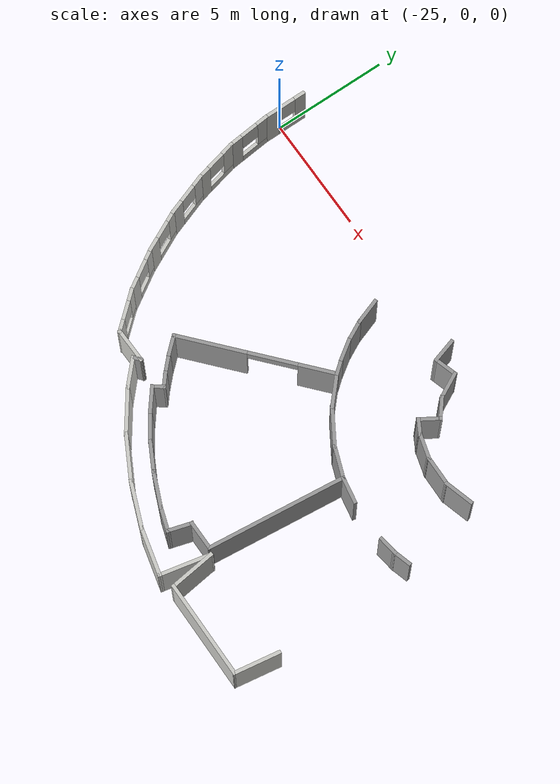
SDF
<sdf version="1.7">
 <model name="model">
  <pose>-4.1341 -0.059214 0 0 -0 0</pose>
  <link name="Wall_144">
   <collision name="Wall_144_Collision">
    <geometry><box><size>1.19979 0.15 2.5</size></box></geometry>
    <pose>0 0 1.25 0 -0 0</pose>
   </collision>
   <visual name="Wall_144_Visual">
    <pose>0 0 1.25 0 -0 0</pose>
    <geometry><box><size>1.19979 0.15 2.5</size></box></geometry>
    <material>
     <script><uri>file://media/materials/scripts/gazebo.material</uri><name>Gazebo/Grey</name></script>
     <ambient>0.929412 0.960784 0.933333 1</ambient>
    </material>
    <meta><layer>0</layer></meta>
   </visual>
   <pose>-11.6485 -2.13121 0 0 -0 -1.23709</pose>
  </link>
  <link name="Wall_145">
   <collision name="Wall_145_Collision">
    <geometry><box><size>1.02535 0.15 2.5</size></box></geometry>
    <pose>0 0 1.25 0 -0 0</pose>
   </collision>
   <visual name="Wall_145_Visual">
    <pose>0 0 1.25 0 -0 0</pose>
    <geometry><box><size>1.02535 0.15 2.5</size></box></geometry>
    <material>
     <script><uri>file://media/materials/scripts/gazebo.material</uri><name>Gazebo/Grey</name></script>
     <ambient>0.929412 0.960784 0.933333 1</ambient>
    </material>
    <meta><layer>0</layer></meta>
   </visual>
   <pose>-11.2782 -3.01729 0 0 -0 -1.10039</pose>
  </link>
  <link name="Wall_146">
   <collision name="Wall_146_Collision">
    <geometry><box><size>0.997329 0.15 2.5</size></box></geometry>
    <pose>0 0 1.25 0 -0 0</pose>
   </collision>
   <visual name="Wall_146_Visual">
    <pose>0 0 1.25 0 -0 0</pose>
    <geometry><box><size>0.997329 0.15 2.5</size></box></geometry>
    <material>
     <script><uri>file://media/materials/scripts/gazebo.material</uri><name>Gazebo/Grey</name></script>
     <ambient>0.929412 0.960784 0.933333 1</ambient>
    </material>
    <meta><layer>0</layer></meta>
   </visual>
   <pose>-10.8418 -3.75789 0 0 -0 -0.974136</pose>
  </link>
  <link name="Wall_147">
   <collision name="Wall_147_Collision">
    <geometry><box><size>0.761361 0.15 2.5</size></box></geometry>
    <pose>0 0 1.25 0 -0 0</pose>
   </collision>
   <visual name="Wall_147_Visual">
    <pose>0 0 1.25 0 -0 0</pose>
    <geometry><box><size>0.761361 0.15 2.5</size></box></geometry>
    <material>
     <script><uri>file://media/materials/scripts/gazebo.material</uri><name>Gazebo/Grey</name></script>
     <ambient>0.929412 0.960784 0.933333 1</ambient>
    </material>
    <meta><layer>0</layer></meta>
   </visual>
   <pose>-10.4119 -4.3464 0 0 -0 -0.892677</pose>
  </link>
  <link name="Wall_149">
   <pose>-12.6849 -6.76582 0 0 -0 -2.4171</pose>
   <visual name="Wall_149_Visual_0">
    <pose>-2.54709 0 1.25 0 -0 0</pose>
    <geometry><box><size>1.63856 0.15 2.5</size></box></geometry>
    <material>
     <script><uri>file://media/materials/scripts/gazebo.material</uri><name>Gazebo/Grey</name></script>
     <ambient>0.929412 0.960784 0.933333 1</ambient>
    </material>
    <meta><layer>0</layer></meta>
   </visual>
   <collision name="Wall_149_Collision_0">
    <geometry><box><size>1.63856 0.15 2.5</size></box></geometry>
    <pose>-2.54709 0 1.25 0 -0 0</pose>
   </collision>
   <visual name="Wall_149_Visual_1">
    <pose>1.84361 0 1.25 0 -0 0</pose>
    <geometry><box><size>3.04552 0.15 2.5</size></box></geometry>
    <material>
     <script><uri>file://media/materials/scripts/gazebo.material</uri><name>Gazebo/Grey</name></script>
     <ambient>0.929412 0.960784 0.933333 1</ambient>
    </material>
    <meta><layer>0</layer></meta>
   </visual>
   <collision name="Wall_149_Collision_1">
    <geometry><box><size>3.04552 0.15 2.5</size></box></geometry>
    <pose>1.84361 0 1.25 0 -0 0</pose>
   </collision>
   <visual name="Wall_149_Visual_2">
    <pose>-0.703479 0 2.25 0 -0 0</pose>
    <geometry><box><size>2.04867 0.15 0.5</size></box></geometry>
    <material>
     <script><uri>file://media/materials/scripts/gazebo.material</uri><name>Gazebo/Grey</name></script>
     <ambient>0.929412 0.960784 0.933333 1</ambient>
    </material>
    <meta><layer>0</layer></meta>
   </visual>
   <collision name="Wall_149_Collision_2">
    <geometry><box><size>2.04867 0.15 0.5</size></box></geometry>
    <pose>-0.703479 0 2.25 0 -0 0</pose>
   </collision>
  </link>
  <link name="Wall_153">
   <collision name="Wall_153_Collision">
    <geometry><box><size>0.953287 0.15 2.5</size></box></geometry>
    <pose>0 0 1.25 0 -0 0</pose>
   </collision>
   <visual name="Wall_153_Visual">
    <pose>0 0 1.25 0 -0 0</pose>
    <geometry><box><size>0.953287 0.15 2.5</size></box></geometry>
    <material>
     <script><uri>file://media/materials/scripts/gazebo.material</uri><name>Gazebo/Grey</name></script>
     <ambient>1 1 1 1</ambient>
    </material>
    <meta><layer>0</layer></meta>
   </visual>
   <pose>-14.8797 -9.24465 0 0 -0 -0.833951</pose>
  </link>
  <link name="Wall_154">
   <collision name="Wall_154_Collision">
    <geometry><box><size>0.912545 0.15 2.5</size></box></geometry>
    <pose>0 0 1.25 0 -0 0</pose>
   </collision>
   <visual name="Wall_154_Visual">
    <pose>0 0 1.25 0 -0 0</pose>
    <geometry><box><size>0.912545 0.15 2.5</size></box></geometry>
    <material>
     <script><uri>file://media/materials/scripts/gazebo.material</uri><name>Gazebo/Grey</name></script>
     <ambient>1 1 1 1</ambient>
    </material>
    <meta><layer>0</layer></meta>
   </visual>
   <pose>-14.3359 -9.80732 0 0 -0 -0.769271</pose>
  </link>
  <link name="Wall_155">
   <collision name="Wall_155_Collision">
    <geometry><box><size>0.730072 0.15 2.5</size></box></geometry>
    <pose>0 0 1.25 0 -0 0</pose>
   </collision>
   <visual name="Wall_155_Visual">
    <pose>0 0 1.25 0 -0 0</pose>
    <geometry><box><size>0.730072 0.15 2.5</size></box></geometry>
    <material>
     <script><uri>file://media/materials/scripts/gazebo.material</uri><name>Gazebo/Grey</name></script>
     <ambient>1 1 1 1</ambient>
    </material>
    <meta><layer>0</layer></meta>
   </visual>
   <pose>-13.8402 -10.2595 0 0 -0 -0.700496</pose>
  </link>
  <link name="Wall_156">
   <collision name="Wall_156_Collision">
    <geometry><box><size>0.603926 0.15 2.5</size></box></geometry>
    <pose>0 0 1.25 0 -0 0</pose>
   </collision>
   <visual name="Wall_156_Visual">
    <pose>0 0 1.25 0 -0 0</pose>
    <geometry><box><size>0.603926 0.15 2.5</size></box></geometry>
    <material>
     <script><uri>file://media/materials/scripts/gazebo.material</uri><name>Gazebo/Grey</name></script>
     <ambient>1 1 1 1</ambient>
    </material>
    <meta><layer>0</layer></meta>
   </visual>
   <pose>-13.7533 -10.6291 0 0 -0 -2.20663</pose>
  </link>
  <link name="Wall_158">
   <collision name="Wall_158_Collision">
    <geometry><box><size>1.18744 0.15 2.5</size></box></geometry>
    <pose>0 0 1.25 0 -0 0</pose>
   </collision>
   <visual name="Wall_158_Visual">
    <pose>0 0 1.25 0 -0 0</pose>
    <geometry><box><size>1.18744 0.15 2.5</size></box></geometry>
    <material>
     <script><uri>file://media/materials/scripts/gazebo.material</uri><name>Gazebo/Grey</name></script>
     <ambient>1 1 1 1</ambient>
    </material>
    <meta><layer>0</layer></meta>
   </visual>
   <pose>-13.4803 -11.1323 0 0 -0 -0.666394</pose>
  </link>
  <link name="Wall_159">
   <collision name="Wall_159_Collision">
    <geometry><box><size>1.33983 0.15 2.5</size></box></geometry>
    <pose>0 0 1.25 0 -0 0</pose>
   </collision>
   <visual name="Wall_159_Visual">
    <pose>0 0 1.25 0 -0 0</pose>
    <geometry><box><size>1.33983 0.15 2.5</size></box></geometry>
    <material>
     <script><uri>file://media/materials/scripts/gazebo.material</uri><name>Gazebo/Grey</name></script>
     <ambient>1 1 1 1</ambient>
    </material>
    <meta><layer>0</layer></meta>
   </visual>
   <pose>-12.5776 -11.783 0 0 -0 -0.588003</pose>
  </link>
  <link name="Wall_160">
   <collision name="Wall_160_Collision">
    <geometry><box><size>1.37119 0.15 2.5</size></box></geometry>
    <pose>0 0 1.25 0 -0 0</pose>
   </collision>
   <visual name="Wall_160_Visual">
    <pose>0 0 1.25 0 -0 0</pose>
    <geometry><box><size>1.37119 0.15 2.5</size></box></geometry>
    <material>
     <script><uri>file://media/materials/scripts/gazebo.material</uri><name>Gazebo/Grey</name></script>
     <ambient>1 1 1 1</ambient>
    </material>
    <meta><layer>0</layer></meta>
   </visual>
   <pose>-11.5426 -12.398 0 0 -0 -0.485622</pose>
  </link>
  <link name="Wall_161">
   <collision name="Wall_161_Collision">
    <geometry><box><size>1.62462 0.15 2.5</size></box></geometry>
    <pose>0 0 1.25 0 -0 0</pose>
   </collision>
   <visual name="Wall_161_Visual">
    <pose>0 0 1.25 0 -0 0</pose>
    <geometry><box><size>1.62462 0.15 2.5</size></box></geometry>
    <material>
     <script><uri>file://media/materials/scripts/gazebo.material</uri><name>Gazebo/Grey</name></script>
     <ambient>1 1 1 1</ambient>
    </material>
    <meta><layer>0</layer></meta>
   </visual>
   <pose>-10.3226 -12.968 0 0 -0 -0.396878</pose>
  </link>
  <link name="Wall_162">
   <collision name="Wall_162_Collision">
    <geometry><box><size>1.11768 0.15 2.5</size></box></geometry>
    <pose>0 0 1.25 0 -0 0</pose>
   </collision>
   <visual name="Wall_162_Visual">
    <pose>0 0 1.25 0 -0 0</pose>
    <geometry><box><size>1.11768 0.15 2.5</size></box></geometry>
    <material>
     <script><uri>file://media/materials/scripts/gazebo.material</uri><name>Gazebo/Grey</name></script>
     <ambient>1 1 1 1</ambient>
    </material>
    <meta><layer>0</layer></meta>
   </visual>
   <pose>-9.18259 -13.403 0 0 -0 -0.315215</pose>
  </link>
  <link name="Wall_163">
   <collision name="Wall_163_Collision">
    <geometry><box><size>1.12124 0.15 2.5</size></box></geometry>
    <pose>0 0 1.25 0 -0 0</pose>
   </collision>
   <visual name="Wall_163_Visual">
    <pose>0 0 1.25 0 -0 0</pose>
    <geometry><box><size>1.12124 0.15 2.5</size></box></geometry>
    <material>
     <script><uri>file://media/materials/scripts/gazebo.material</uri><name>Gazebo/Grey</name></script>
     <ambient>1 1 1 1</ambient>
    </material>
    <meta><layer>0</layer></meta>
   </visual>
   <pose>-8.58259 -13.088 0 0 -0 1.27835</pose>
  </link>
  <link name="Wall_164">
   <collision name="Wall_164_Collision">
    <geometry><box><size>1.33004 0.15 2.5</size></box></geometry>
    <pose>0 0 1.25 0 -0 0</pose>
   </collision>
   <visual name="Wall_164_Visual">
    <pose>0 0 1.25 0 -0 0</pose>
    <geometry><box><size>1.33004 0.15 2.5</size></box></geometry>
    <material>
     <script><uri>file://media/materials/scripts/gazebo.material</uri><name>Gazebo/Grey</name></script>
     <ambient>1 1 1 1</ambient>
    </material>
    <meta><layer>0</layer></meta>
   </visual>
   <pose>-7.85259 -12.618 0 0 -0 0.008474</pose>
  </link>
  <link name="Wall_166">
   <collision name="Wall_166_Collision">
    <geometry><box><size>5.98967 0.15 2.5</size></box></geometry>
    <pose>0 0 1.25 0 -0 0</pose>
   </collision>
   <visual name="Wall_166_Visual">
    <pose>0 0 1.25 0 -0 0</pose>
    <geometry><box><size>5.98967 0.15 2.5</size></box></geometry>
    <material>
     <script><uri>file://media/materials/scripts/gazebo.material</uri><name>Gazebo/Grey</name></script>
     <ambient>1 1 1 1</ambient>
    </material>
    <meta><layer>0</layer></meta>
   </visual>
   <pose>-6.94415 -9.71055 0 0 -0 1.46152</pose>
  </link>
  <link name="Wall_167">
   <collision name="Wall_167_Collision">
    <geometry><box><size>1.20017 0.15 2.5</size></box></geometry>
    <pose>0 0 1.25 0 -0 0</pose>
   </collision>
   <visual name="Wall_167_Visual">
    <pose>0 0 1.25 0 -0 0</pose>
    <geometry><box><size>1.20017 0.15 2.5</size></box></geometry>
    <material>
     <script><uri>file://media/materials/scripts/gazebo.material</uri><name>Gazebo/Grey</name></script>
     <ambient>1 1 1 1</ambient>
    </material>
    <meta><layer>0</layer></meta>
   </visual>
   <pose>-6.10861 -6.89938 0 0 -0 -0.174672</pose>
  </link>
  <link name="Wall_169">
   <collision name="Wall_169_Collision">
    <geometry><box><size>1.45339 0.15 2.5</size></box></geometry>
    <pose>0 0 1.25 0 -0 0</pose>
   </collision>
   <visual name="Wall_169_Visual">
    <pose>0 0 1.25 0 -0 0</pose>
    <geometry><box><size>1.45339 0.15 2.5</size></box></geometry>
    <material>
     <script><uri>file://media/materials/scripts/gazebo.material</uri><name>Gazebo/Grey</name></script>
     <ambient>1 1 1 1</ambient>
    </material>
    <meta><layer>0</layer></meta>
   </visual>
   <pose>-7.23666 -6.58131 0 0 -0 2.7861</pose>
  </link>
  <link name="Wall_170">
   <collision name="Wall_170_Collision">
    <geometry><box><size>1.74678 0.15 2.5</size></box></geometry>
    <pose>0 0 1.25 0 -0 0</pose>
   </collision>
   <visual name="Wall_170_Visual">
    <pose>0 0 1.25 0 -0 0</pose>
    <geometry><box><size>1.74678 0.15 2.5</size></box></geometry>
    <material>
     <script><uri>file://media/materials/scripts/gazebo.material</uri><name>Gazebo/Grey</name></script>
     <ambient>1 1 1 1</ambient>
    </material>
    <meta><layer>0</layer></meta>
   </visual>
   <pose>-8.52869 -5.93789 0 0 -0 2.59265</pose>
  </link>
  <link name="Wall_171">
   <collision name="Wall_171_Collision">
    <geometry><box><size>1.49778 0.15 2.5</size></box></geometry>
    <pose>0 0 1.25 0 -0 0</pose>
   </collision>
   <visual name="Wall_171_Visual">
    <pose>0 0 1.25 0 -0 0</pose>
    <geometry><box><size>1.49778 0.15 2.5</size></box></geometry>
    <material>
     <script><uri>file://media/materials/scripts/gazebo.material</uri><name>Gazebo/Grey</name></script>
     <ambient>1 1 1 1</ambient>
    </material>
    <meta><layer>0</layer></meta>
   </visual>
   <pose>-9.70572 -5.06504 0 0 -0 2.39784</pose>
  </link>
  <link name="Wall_173">
   <collision name="Wall_173_Collision">
    <geometry><box><size>0.887742 0.15 2.5</size></box></geometry>
    <pose>0 0 1.25 0 -0 0</pose>
   </collision>
   <visual name="Wall_173_Visual">
    <pose>0 0 1.25 0 -0 0</pose>
    <geometry><box><size>0.887742 0.15 2.5</size></box></geometry>
    <material>
     <script><uri>file://media/materials/scripts/gazebo.material</uri><name>Gazebo/Grey</name></script>
     <ambient>1 1 1 1</ambient>
    </material>
    <meta><layer>0</layer></meta>
   </visual>
   <pose>-3.43446 -6.9344 0 0 -0 0.144812</pose>
  </link>
  <link name="Wall_174">
   <collision name="Wall_174_Collision">
    <geometry><box><size>0.847782 0.15 2.5</size></box></geometry>
    <pose>0 0 1.25 0 -0 0</pose>
   </collision>
   <visual name="Wall_174_Visual">
    <pose>0 0 1.25 0 -0 0</pose>
    <geometry><box><size>0.847782 0.15 2.5</size></box></geometry>
    <material>
     <script><uri>file://media/materials/scripts/gazebo.material</uri><name>Gazebo/Grey</name></script>
     <ambient>1 1 1 1</ambient>
    </material>
    <meta><layer>0</layer></meta>
   </visual>
   <pose>-2.73486 -6.78231 0 0 -0 0.287281</pose>
  </link>
  <link name="Wall_317">
   <collision name="Wall_317_Collision">
    <geometry><box><size>1.33513 0.15 2.5</size></box></geometry>
    <pose>0 0 1.25 0 -0 0</pose>
   </collision>
   <visual name="Wall_317_Visual">
    <pose>0 0 1.25 0 -0 0</pose>
    <geometry><box><size>1.33513 0.15 2.5</size></box></geometry>
    <material>
     <script><uri>file://media/materials/scripts/gazebo.material</uri><name>Gazebo/Grey</name></script>
     <ambient>1 1 1 1</ambient>
    </material>
    <meta><layer>0</layer></meta>
   </visual>
   <pose>-3.5968 -3.48902 0 0 -0 -2.85799</pose>
  </link>
  <link name="Wall_318">
   <collision name="Wall_318_Collision">
    <geometry><box><size>1.36212 0.15 2.5</size></box></geometry>
    <pose>0 0 1.25 0 -0 0</pose>
   </collision>
   <visual name="Wall_318_Visual">
    <pose>0 0 1.25 0 -0 0</pose>
    <geometry><box><size>1.36212 0.15 2.5</size></box></geometry>
    <material>
     <script><uri>file://media/materials/scripts/gazebo.material</uri><name>Gazebo/Grey</name></script>
     <ambient>1 1 1 1</ambient>
    </material>
    <meta><layer>0</layer></meta>
   </visual>
   <pose>-4.77176 -3.64339 0 0 -0 3.12273</pose>
  </link>
  <link name="Wall_319">
   <collision name="Wall_319_Collision">
    <geometry><box><size>1.16705 0.15 2.5</size></box></geometry>
    <pose>0 0 1.25 0 -0 0</pose>
   </collision>
   <visual name="Wall_319_Visual">
    <pose>0 0 1.25 0 -0 0</pose>
    <geometry><box><size>1.16705 0.15 2.5</size></box></geometry>
    <material>
     <script><uri>file://media/materials/scripts/gazebo.material</uri><name>Gazebo/Grey</name></script>
     <ambient>1 1 1 1</ambient>
    </material>
    <meta><layer>0</layer></meta>
   </visual>
   <pose>-5.86666 -3.49187 0 0 -0 2.86252</pose>
  </link>
  <link name="Wall_320">
   <collision name="Wall_320_Collision">
    <geometry><box><size>0.764202 0.15 2.5</size></box></geometry>
    <pose>0 0 1.25 0 -0 0</pose>
   </collision>
   <visual name="Wall_320_Visual">
    <pose>0 0 1.25 0 -0 0</pose>
    <geometry><box><size>0.764202 0.15 2.5</size></box></geometry>
    <material>
     <script><uri>file://media/materials/scripts/gazebo.material</uri><name>Gazebo/Grey</name></script>
     <ambient>1 1 1 1</ambient>
    </material>
    <meta><layer>0</layer></meta>
   </visual>
   <pose>-6.62424 -3.20314 0 0 -0 2.6363</pose>
  </link>
  <link name="Wall_321">
   <collision name="Wall_321_Collision">
    <geometry><box><size>1.01303 0.15 2.5</size></box></geometry>
    <pose>0 0 1.25 0 -0 0</pose>
   </collision>
   <visual name="Wall_321_Visual">
    <pose>0 0 1.25 0 -0 0</pose>
    <geometry><box><size>1.01303 0.15 2.5</size></box></geometry>
    <material>
     <script><uri>file://media/materials/scripts/gazebo.material</uri><name>Gazebo/Grey</name></script>
     <ambient>1 1 1 1</ambient>
    </material>
    <meta><layer>0</layer></meta>
   </visual>
   <pose>-6.66426 -2.68856 0 0 -0 1.0122</pose>
  </link>
  <link name="Wall_323">
   <collision name="Wall_323_Collision">
    <geometry><box><size>1.02555 0.15 2.5</size></box></geometry>
    <pose>0 0 1.25 0 -0 0</pose>
   </collision>
   <visual name="Wall_323_Visual">
    <pose>0 0 1.25 0 -0 0</pose>
    <geometry><box><size>1.02555 0.15 2.5</size></box></geometry>
    <material>
     <script><uri>file://media/materials/scripts/gazebo.material</uri><name>Gazebo/Grey</name></script>
     <ambient>1 1 1 1</ambient>
    </material>
    <meta><layer>0</layer></meta>
   </visual>
   <pose>-6.77373 -2.04463 0 0 -0 2.45352</pose>
  </link>
  <link name="Wall_324">
   <collision name="Wall_324_Collision">
    <geometry><box><size>1.23235 0.15 2.5</size></box></geometry>
    <pose>0 0 1.25 0 -0 0</pose>
   </collision>
   <visual name="Wall_324_Visual">
    <pose>0 0 1.25 0 -0 0</pose>
    <geometry><box><size>1.23235 0.15 2.5</size></box></geometry>
    <material>
     <script><uri>file://media/materials/scripts/gazebo.material</uri><name>Gazebo/Grey</name></script>
     <ambient>1 1 1 1</ambient>
    </material>
    <meta><layer>0</layer></meta>
   </visual>
   <pose>-7.35656 -1.28391 0 0 -0 2.03991</pose>
  </link>
  <link name="Wall_325">
   <collision name="Wall_325_Collision">
    <geometry><box><size>1.06205 0.15 2.5</size></box></geometry>
    <pose>0 0 1.25 0 -0 0</pose>
   </collision>
   <visual name="Wall_325_Visual">
    <pose>0 0 1.25 0 -0 0</pose>
    <geometry><box><size>1.06205 0.15 2.5</size></box></geometry>
    <material>
     <script><uri>file://media/materials/scripts/gazebo.material</uri><name>Gazebo/Grey</name></script>
     <ambient>1 1 1 1</ambient>
    </material>
    <meta><layer>0</layer></meta>
   </visual>
   <pose>-8.03764 -0.933445 0 0 -0 -2.84736</pose>
  </link>
  <link name="Wall_326">
   <collision name="Wall_326_Collision">
    <geometry><box><size>1.12919 0.15 2.5</size></box></geometry>
    <pose>0 0 1.25 0 -0 0</pose>
   </collision>
   <visual name="Wall_326_Visual">
    <pose>0 0 1.25 0 -0 0</pose>
    <geometry><box><size>1.12919 0.15 2.5</size></box></geometry>
    <material>
     <script><uri>file://media/materials/scripts/gazebo.material</uri><name>Gazebo/Grey</name></script>
     <ambient>1 1 1 1</ambient>
    </material>
    <meta><layer>0</layer></meta>
   </visual>
   <pose>-8.61293 -0.596208 0 0 -0 1.85837</pose>
  </link>
  <link name="Wall_66">
   <collision name="Wall_66_Collision">
    <geometry><box><size>2.01327 0.15 2.5</size></box></geometry>
    <pose>0 0 1.25 0 -0 0</pose>
   </collision>
   <visual name="Wall_66_Visual">
    <pose>0 0 1.25 0 -0 0</pose>
    <geometry><box><size>2.01327 0.15 2.5</size></box></geometry>
    <material>
     <script><uri>file://media/materials/scripts/gazebo.material</uri><name>Gazebo/CeilingTiled</name></script>
     <ambient>0.964706 1 0.972549 1</ambient>
    </material>
    <meta><layer>0</layer></meta>
   </visual>
   <pose>-2.54923 -13.6491 0 0 -0 -1.73478</pose>
  </link>
  <link name="Wall_68">
   <collision name="Wall_68_Collision">
    <geometry><box><size>4.23655 0.15 2.5</size></box></geometry>
    <pose>0 0 1.25 0 -0 0</pose>
   </collision>
   <visual name="Wall_68_Visual">
    <pose>0 0 1.25 0 -0 0</pose>
    <geometry><box><size>4.23655 0.15 2.5</size></box></geometry>
    <material>
     <script><uri>file://media/materials/scripts/gazebo.material</uri><name>Gazebo/CeilingTiled</name></script>
     <ambient>0.964706 1 0.972549 1</ambient>
    </material>
    <meta><layer>0</layer></meta>
   </visual>
   <pose>-4.74458 -14.5748 0 0 -0 -3.13836</pose>
  </link>
  <link name="Wall_69">
   <collision name="Wall_69_Collision">
    <geometry><box><size>2.02823 0.15 2.5</size></box></geometry>
    <pose>0 0 1.25 0 -0 0</pose>
   </collision>
   <visual name="Wall_69_Visual">
    <pose>0 0 1.25 0 -0 0</pose>
    <geometry><box><size>2.02823 0.15 2.5</size></box></geometry>
    <material>
     <script><uri>file://media/materials/scripts/gazebo.material</uri><name>Gazebo/CeilingTiled</name></script>
     <ambient>0.964706 1 0.972549 1</ambient>
    </material>
    <meta><layer>0</layer></meta>
   </visual>
   <pose>-6.90026 -13.6491 0 0 -0 1.69078</pose>
  </link>
  <link name="Wall_70">
   <collision name="Wall_70_Collision">
    <geometry><box><size>2.26153 0.15 2.5</size></box></geometry>
    <pose>0 0 1.25 0 -0 0</pose>
   </collision>
   <visual name="Wall_70_Visual">
    <pose>0 0 1.25 0 -0 0</pose>
    <geometry><box><size>2.26153 0.15 2.5</size></box></geometry>
    <material>
     <script><uri>file://media/materials/scripts/gazebo.material</uri><name>Gazebo/CeilingTiled</name></script>
     <ambient>0.964706 1 0.972549 1</ambient>
    </material>
    <meta><layer>0</layer></meta>
   </visual>
   <pose>-7.2375 -13.7483 0 0 -0 -1.78539</pose>
  </link>
  <link name="Wall_71">
   <collision name="Wall_71_Collision">
    <geometry><box><size>2.1227 0.15 2.5</size></box></geometry>
    <pose>0 0 1.25 0 -0 0</pose>
   </collision>
   <visual name="Wall_71_Visual">
    <pose>0 0 1.25 0 -0 0</pose>
    <geometry><box><size>2.1227 0.15 2.5</size></box></geometry>
    <material>
     <script><uri>file://media/materials/scripts/gazebo.material</uri><name>Gazebo/CeilingTiled</name></script>
     <ambient>0.964706 1 0.972549 1</ambient>
    </material>
    <meta><layer>0</layer></meta>
   </visual>
   <pose>-8.42113 -14.5484 0 0 -0 2.90474</pose>
  </link>
  <link name="Wall_72">
   <collision name="Wall_72_Collision">
    <geometry><box><size>2.08035 0.15 2.5</size></box></geometry>
    <pose>0 0 1.25 0 -0 0</pose>
   </collision>
   <visual name="Wall_72_Visual">
    <pose>0 0 1.25 0 -0 0</pose>
    <geometry><box><size>2.08035 0.15 2.5</size></box></geometry>
    <material>
     <script><uri>file://media/materials/scripts/gazebo.material</uri><name>Gazebo/CeilingTiled</name></script>
     <ambient>0.964706 1 0.972549 1</ambient>
    </material>
    <meta><layer>0</layer></meta>
   </visual>
   <pose>-10.2792 -13.9665 0 0 -0 2.76999</pose>
  </link>
  <link name="Wall_73">
   <collision name="Wall_73_Collision">
    <geometry><box><size>2.06685 0.15 2.5</size></box></geometry>
    <pose>0 0 1.25 0 -0 0</pose>
   </collision>
   <visual name="Wall_73_Visual">
    <pose>0 0 1.25 0 -0 0</pose>
    <geometry><box><size>2.06685 0.15 2.5</size></box></geometry>
    <material>
     <script><uri>file://media/materials/scripts/gazebo.material</uri><name>Gazebo/CeilingTiled</name></script>
     <ambient>0.964706 1 0.972549 1</ambient>
    </material>
    <meta><layer>0</layer></meta>
   </visual>
   <pose>-12.0249 -13.1664 0 0 -0 2.65326</pose>
  </link>
  <link name="Wall_75">
   <collision name="Wall_75_Collision">
    <geometry><box><size>2.02562 0.15 2.5</size></box></geometry>
    <pose>0 0 1.25 0 -0 0</pose>
   </collision>
   <visual name="Wall_75_Visual">
    <pose>0 0 1.25 0 -0 0</pose>
    <geometry><box><size>2.02562 0.15 2.5</size></box></geometry>
    <material>
     <script><uri>file://media/materials/scripts/gazebo.material</uri><name>Gazebo/CeilingTiled</name></script>
     <ambient>0.964706 1 0.972549 1</ambient>
    </material>
    <meta><layer>0</layer></meta>
   </visual>
   <pose>-13.6318 -12.1679 0 0 -0 2.51642</pose>
  </link>
  <link name="Wall_76">
   <collision name="Wall_76_Collision">
    <geometry><box><size>1.39463 0.15 2.5</size></box></geometry>
    <pose>0 0 1.25 0 -0 0</pose>
   </collision>
   <visual name="Wall_76_Visual">
    <pose>0 0 1.25 0 -0 0</pose>
    <geometry><box><size>1.39463 0.15 2.5</size></box></geometry>
    <material>
     <script><uri>file://media/materials/scripts/gazebo.material</uri><name>Gazebo/CeilingTiled</name></script>
     <ambient>0.964706 1 0.972549 1</ambient>
    </material>
    <meta><layer>0</layer></meta>
   </visual>
   <pose>-14.8485 -11.1959 0 0 -0 2.39377</pose>
  </link>
  <link name="Wall_77">
   <collision name="Wall_77_Collision">
    <geometry><box><size>0.478502 0.15 2.5</size></box></geometry>
    <pose>0 0 1.25 0 -0 0</pose>
   </collision>
   <visual name="Wall_77_Visual">
    <pose>0 0 1.25 0 -0 0</pose>
    <geometry><box><size>0.478502 0.15 2.5</size></box></geometry>
    <material>
     <script><uri>file://media/materials/scripts/gazebo.material</uri><name>Gazebo/Grey</name></script>
     <ambient>1 1 1 1</ambient>
    </material>
    <meta><layer>0</layer></meta>
   </visual>
   <pose>-15.1791 -10.6669 0 0 -0 0.699893</pose>
  </link>
  <link name="Wall_78">
   <collision name="Wall_78_Collision">
    <geometry><box><size>1.59207 0.15 2.5</size></box></geometry>
    <pose>0 0 1.25 0 -0 0</pose>
   </collision>
   <visual name="Wall_78_Visual">
    <pose>0 0 1.25 0 -0 0</pose>
    <geometry><box><size>1.59207 0.15 2.5</size></box></geometry>
    <material>
     <script><uri>file://media/materials/scripts/gazebo.material</uri><name>Gazebo/CeilingTiled</name></script>
     <ambient>0.964706 1 0.972549 1</ambient>
    </material>
    <meta><layer>0</layer></meta>
   </visual>
   <pose>-15.7742 -10.5809 0 0 -0 -3.11408</pose>
  </link>
  <link name="Wall_80">
   <pose>-17.0835 -9.92626 0 0 -0 2.28824</pose>
   <visual name="Wall_80_Visual_0">
    <pose>-0.679132 0 1.25 0 -0 0</pose>
    <geometry><box><size>0.582002 0.15 2.5</size></box></geometry>
    <material>
     <script><uri>file://media/materials/scripts/gazebo.material</uri><name>Gazebo/CeilingTiled</name></script>
     <ambient>0 0.423529 0.960784 1</ambient>
    </material>
    <meta><layer>0</layer></meta>
   </visual>
   <collision name="Wall_80_Collision_0">
    <geometry><box><size>0.582002 0.15 2.5</size></box></geometry>
    <pose>-0.679132 0 1.25 0 -0 0</pose>
   </collision>
   <visual name="Wall_80_Visual_1">
    <pose>0.291001 0 0.25 0 -0 0</pose>
    <geometry><box><size>1.35826 0.15 0.5</size></box></geometry>
    <material>
     <script><uri>file://media/materials/scripts/gazebo.material</uri><name>Gazebo/CeilingTiled</name></script>
     <ambient>0 0.423529 0.960784 1</ambient>
    </material>
    <meta><layer>0</layer></meta>
   </visual>
   <collision name="Wall_80_Collision_1">
    <geometry><box><size>1.35826 0.15 0.5</size></box></geometry>
    <pose>0.291001 0 0.25 0 -0 0</pose>
   </collision>
   <visual name="Wall_80_Visual_2">
    <pose>0.691001 0 1.5 0 -0 0</pose>
    <geometry><box><size>0.558264 0.15 2</size></box></geometry>
    <material>
     <script><uri>file://media/materials/scripts/gazebo.material</uri><name>Gazebo/CeilingTiled</name></script>
     <ambient>0 0.423529 0.960784 1</ambient>
    </material>
    <meta><layer>0</layer></meta>
   </visual>
   <collision name="Wall_80_Collision_2">
    <geometry><box><size>0.558264 0.15 2</size></box></geometry>
    <pose>0.691001 0 1.5 0 -0 0</pose>
   </collision>
   <visual name="Wall_80_Visual_3">
    <pose>0.011869 0 1.9 0 -0 0</pose>
    <geometry><box><size>0.8 0.15 1.2</size></box></geometry>
    <material>
     <script><uri>file://media/materials/scripts/gazebo.material</uri><name>Gazebo/CeilingTiled</name></script>
     <ambient>0 0.423529 0.960784 1</ambient>
    </material>
    <meta><layer>0</layer></meta>
   </visual>
   <collision name="Wall_80_Collision_3">
    <geometry><box><size>0.8 0.15 1.2</size></box></geometry>
    <pose>0.011869 0 1.9 0 -0 0</pose>
   </collision>
  </link>
  <link name="Wall_81">
   <pose>-18.1613 -8.48473 0 0 -0 2.13864</pose>
   <visual name="Wall_81_Visual_0">
    <pose>-0.666849 0 1.25 0 -0 0</pose>
    <geometry><box><size>0.635978 0.15 2.5</size></box></geometry>
    <material>
     <script><uri>file://media/materials/scripts/gazebo.material</uri><name>Gazebo/CeilingTiled</name></script>
     <ambient>0 0.423529 0.960784 1</ambient>
    </material>
    <meta><layer>0</layer></meta>
   </visual>
   <collision name="Wall_81_Collision_0">
    <geometry><box><size>0.635978 0.15 2.5</size></box></geometry>
    <pose>-0.666849 0 1.25 0 -0 0</pose>
   </collision>
   <visual name="Wall_81_Visual_1">
    <pose>0.317989 0 0.25 0 -0 0</pose>
    <geometry><box><size>1.3337 0.15 0.5</size></box></geometry>
    <material>
     <script><uri>file://media/materials/scripts/gazebo.material</uri><name>Gazebo/CeilingTiled</name></script>
     <ambient>0 0.423529 0.960784 1</ambient>
    </material>
    <meta><layer>0</layer></meta>
   </visual>
   <collision name="Wall_81_Collision_1">
    <geometry><box><size>1.3337 0.15 0.5</size></box></geometry>
    <pose>0.317989 0 0.25 0 -0 0</pose>
   </collision>
   <visual name="Wall_81_Visual_2">
    <pose>0.717989 0 1.5 0 -0 0</pose>
    <geometry><box><size>0.533697 0.15 2</size></box></geometry>
    <material>
     <script><uri>file://media/materials/scripts/gazebo.material</uri><name>Gazebo/CeilingTiled</name></script>
     <ambient>0 0.423529 0.960784 1</ambient>
    </material>
    <meta><layer>0</layer></meta>
   </visual>
   <collision name="Wall_81_Collision_2">
    <geometry><box><size>0.533697 0.15 2</size></box></geometry>
    <pose>0.717989 0 1.5 0 -0 0</pose>
   </collision>
   <visual name="Wall_81_Visual_3">
    <pose>0.05114 0 1.9 0 -0 0</pose>
    <geometry><box><size>0.8 0.15 1.2</size></box></geometry>
    <material>
     <script><uri>file://media/materials/scripts/gazebo.material</uri><name>Gazebo/CeilingTiled</name></script>
     <ambient>0 0.423529 0.960784 1</ambient>
    </material>
    <meta><layer>0</layer></meta>
   </visual>
   <collision name="Wall_81_Collision_3">
    <geometry><box><size>0.8 0.15 1.2</size></box></geometry>
    <pose>0.05114 0 1.9 0 -0 0</pose>
   </collision>
  </link>
  <link name="Wall_83">
   <pose>-19.0596 -6.89911 0 0 -0 2.03407</pose>
   <visual name="Wall_83_Visual_0">
    <pose>-0.667927 0 1.25 0 -0 0</pose>
    <geometry><box><size>0.644177 0.15 2.5</size></box></geometry>
    <material>
     <script><uri>file://media/materials/scripts/gazebo.material</uri><name>Gazebo/CeilingTiled</name></script>
     <ambient>0 0.423529 0.960784 1</ambient>
    </material>
    <meta><layer>0</layer></meta>
   </visual>
   <collision name="Wall_83_Collision_0">
    <geometry><box><size>0.644177 0.15 2.5</size></box></geometry>
    <pose>-0.667927 0 1.25 0 -0 0</pose>
   </collision>
   <visual name="Wall_83_Visual_1">
    <pose>0.322089 0 0.25 0 -0 0</pose>
    <geometry><box><size>1.33585 0.15 0.5</size></box></geometry>
    <material>
     <script><uri>file://media/materials/scripts/gazebo.material</uri><name>Gazebo/CeilingTiled</name></script>
     <ambient>0 0.423529 0.960784 1</ambient>
    </material>
    <meta><layer>0</layer></meta>
   </visual>
   <collision name="Wall_83_Collision_1">
    <geometry><box><size>1.33585 0.15 0.5</size></box></geometry>
    <pose>0.322089 0 0.25 0 -0 0</pose>
   </collision>
   <visual name="Wall_83_Visual_2">
    <pose>0.722089 0 1.5 0 -0 0</pose>
    <geometry><box><size>0.535853 0.15 2</size></box></geometry>
    <material>
     <script><uri>file://media/materials/scripts/gazebo.material</uri><name>Gazebo/CeilingTiled</name></script>
     <ambient>0 0.423529 0.960784 1</ambient>
    </material>
    <meta><layer>0</layer></meta>
   </visual>
   <collision name="Wall_83_Collision_2">
    <geometry><box><size>0.535853 0.15 2</size></box></geometry>
    <pose>0.722089 0 1.5 0 -0 0</pose>
   </collision>
   <visual name="Wall_83_Visual_3">
    <pose>0.054162 0 1.9 0 -0 0</pose>
    <geometry><box><size>0.8 0.15 1.2</size></box></geometry>
    <material>
     <script><uri>file://media/materials/scripts/gazebo.material</uri><name>Gazebo/CeilingTiled</name></script>
     <ambient>0 0.423529 0.960784 1</ambient>
    </material>
    <meta><layer>0</layer></meta>
   </visual>
   <collision name="Wall_83_Collision_3">
    <geometry><box><size>0.8 0.15 1.2</size></box></geometry>
    <pose>0.054162 0 1.9 0 -0 0</pose>
   </collision>
  </link>
  <link name="Wall_84">
   <pose>-19.7859 -5.2077 0 0 -0 1.91957</pose>
   <visual name="Wall_84_Visual_0">
    <pose>-0.683971 0 1.25 0 -0 0</pose>
    <geometry><box><size>0.639593 0.15 2.5</size></box></geometry>
    <material>
     <script><uri>file://media/materials/scripts/gazebo.material</uri><name>Gazebo/CeilingTiled</name></script>
     <ambient>0 0.423529 0.960784 1</ambient>
    </material>
    <meta><layer>0</layer></meta>
   </visual>
   <collision name="Wall_84_Collision_0">
    <geometry><box><size>0.639593 0.15 2.5</size></box></geometry>
    <pose>-0.683971 0 1.25 0 -0 0</pose>
   </collision>
   <visual name="Wall_84_Visual_1">
    <pose>0.319797 0 0.25 0 -0 0</pose>
    <geometry><box><size>1.36794 0.15 0.5</size></box></geometry>
    <material>
     <script><uri>file://media/materials/scripts/gazebo.material</uri><name>Gazebo/CeilingTiled</name></script>
     <ambient>0 0.423529 0.960784 1</ambient>
    </material>
    <meta><layer>0</layer></meta>
   </visual>
   <collision name="Wall_84_Collision_1">
    <geometry><box><size>1.36794 0.15 0.5</size></box></geometry>
    <pose>0.319797 0 0.25 0 -0 0</pose>
   </collision>
   <visual name="Wall_84_Visual_2">
    <pose>0.719797 0 1.5 0 -0 0</pose>
    <geometry><box><size>0.567942 0.15 2</size></box></geometry>
    <material>
     <script><uri>file://media/materials/scripts/gazebo.material</uri><name>Gazebo/CeilingTiled</name></script>
     <ambient>0 0.423529 0.960784 1</ambient>
    </material>
    <meta><layer>0</layer></meta>
   </visual>
   <collision name="Wall_84_Collision_2">
    <geometry><box><size>0.567942 0.15 2</size></box></geometry>
    <pose>0.719797 0 1.5 0 -0 0</pose>
   </collision>
   <visual name="Wall_84_Visual_3">
    <pose>0.035826 0 1.9 0 -0 0</pose>
    <geometry><box><size>0.8 0.15 1.2</size></box></geometry>
    <material>
     <script><uri>file://media/materials/scripts/gazebo.material</uri><name>Gazebo/CeilingTiled</name></script>
     <ambient>0 0.423529 0.960784 1</ambient>
    </material>
    <meta><layer>0</layer></meta>
   </visual>
   <collision name="Wall_84_Collision_3">
    <geometry><box><size>0.8 0.15 1.2</size></box></geometry>
    <pose>0.035826 0 1.9 0 -0 0</pose>
   </collision>
  </link>
  <link name="Wall_86">
   <pose>-20.3246 -3.43824 0 0 -0 1.81282</pose>
   <visual name="Wall_86_Visual_0">
    <pose>-0.710407 0 1.25 0 -0 0</pose>
    <geometry><box><size>0.576238 0.15 2.5</size></box></geometry>
    <material>
     <script><uri>file://media/materials/scripts/gazebo.material</uri><name>Gazebo/CeilingTiled</name></script>
     <ambient>0 0.423529 0.960784 1</ambient>
    </material>
    <meta><layer>0</layer></meta>
   </visual>
   <collision name="Wall_86_Collision_0">
    <geometry><box><size>0.576238 0.15 2.5</size></box></geometry>
    <pose>-0.710407 0 1.25 0 -0 0</pose>
   </collision>
   <visual name="Wall_86_Visual_1">
    <pose>0.288119 0 0.25 0 -0 0</pose>
    <geometry><box><size>1.42081 0.15 0.5</size></box></geometry>
    <material>
     <script><uri>file://media/materials/scripts/gazebo.material</uri><name>Gazebo/CeilingTiled</name></script>
     <ambient>0 0.423529 0.960784 1</ambient>
    </material>
    <meta><layer>0</layer></meta>
   </visual>
   <collision name="Wall_86_Collision_1">
    <geometry><box><size>1.42081 0.15 0.5</size></box></geometry>
    <pose>0.288119 0 0.25 0 -0 0</pose>
   </collision>
   <visual name="Wall_86_Visual_2">
    <pose>0.688119 0 1.5 0 -0 0</pose>
    <geometry><box><size>0.620814 0.15 2</size></box></geometry>
    <material>
     <script><uri>file://media/materials/scripts/gazebo.material</uri><name>Gazebo/CeilingTiled</name></script>
     <ambient>0 0.423529 0.960784 1</ambient>
    </material>
    <meta><layer>0</layer></meta>
   </visual>
   <collision name="Wall_86_Collision_2">
    <geometry><box><size>0.620814 0.15 2</size></box></geometry>
    <pose>0.688119 0 1.5 0 -0 0</pose>
   </collision>
   <visual name="Wall_86_Visual_3">
    <pose>-0.022288 0 1.9 0 -0 0</pose>
    <geometry><box><size>0.8 0.15 1.2</size></box></geometry>
    <material>
     <script><uri>file://media/materials/scripts/gazebo.material</uri><name>Gazebo/CeilingTiled</name></script>
     <ambient>0 0.423529 0.960784 1</ambient>
    </material>
    <meta><layer>0</layer></meta>
   </visual>
   <collision name="Wall_86_Collision_3">
    <geometry><box><size>0.8 0.15 1.2</size></box></geometry>
    <pose>-0.022288 0 1.9 0 -0 0</pose>
   </collision>
  </link>
  <link name="Wall_88">
   <pose>-20.6401 -1.63694 0 0 -0 1.67453</pose>
   <visual name="Wall_88_Visual_0">
    <pose>-0.680255 0 1.25 0 -0 0</pose>
    <geometry><box><size>0.608646 0.15 2.5</size></box></geometry>
    <material>
     <script><uri>file://media/materials/scripts/gazebo.material</uri><name>Gazebo/CeilingTiled</name></script>
     <ambient>0 0.423529 0.960784 1</ambient>
    </material>
    <meta><layer>0</layer></meta>
   </visual>
   <collision name="Wall_88_Collision_0">
    <geometry><box><size>0.608646 0.15 2.5</size></box></geometry>
    <pose>-0.680255 0 1.25 0 -0 0</pose>
   </collision>
   <visual name="Wall_88_Visual_1">
    <pose>0.304323 0 0.25 0 -0 0</pose>
    <geometry><box><size>1.36051 0.15 0.5</size></box></geometry>
    <material>
     <script><uri>file://media/materials/scripts/gazebo.material</uri><name>Gazebo/CeilingTiled</name></script>
     <ambient>0 0.423529 0.960784 1</ambient>
    </material>
    <meta><layer>0</layer></meta>
   </visual>
   <collision name="Wall_88_Collision_1">
    <geometry><box><size>1.36051 0.15 0.5</size></box></geometry>
    <pose>0.304323 0 0.25 0 -0 0</pose>
   </collision>
   <visual name="Wall_88_Visual_2">
    <pose>0.704323 0 1.5 0 -0 0</pose>
    <geometry><box><size>0.560511 0.15 2</size></box></geometry>
    <material>
     <script><uri>file://media/materials/scripts/gazebo.material</uri><name>Gazebo/CeilingTiled</name></script>
     <ambient>0 0.423529 0.960784 1</ambient>
    </material>
    <meta><layer>0</layer></meta>
   </visual>
   <collision name="Wall_88_Collision_2">
    <geometry><box><size>0.560511 0.15 2</size></box></geometry>
    <pose>0.704323 0 1.5 0 -0 0</pose>
   </collision>
   <visual name="Wall_88_Visual_3">
    <pose>0.024068 0 1.9 0 -0 0</pose>
    <geometry><box><size>0.8 0.15 1.2</size></box></geometry>
    <material>
     <script><uri>file://media/materials/scripts/gazebo.material</uri><name>Gazebo/CeilingTiled</name></script>
     <ambient>0 0.423529 0.960784 1</ambient>
    </material>
    <meta><layer>0</layer></meta>
   </visual>
   <collision name="Wall_88_Collision_3">
    <geometry><box><size>0.8 0.15 1.2</size></box></geometry>
    <pose>0.024068 0 1.9 0 -0 0</pose>
   </collision>
  </link>
  <link name="Wall_89">
   <pose>-20.7409 0.186888 0 0 -0 1.57799</pose>
   <visual name="Wall_89_Visual_0">
    <pose>-0.657941 0 1.25 0 -0 0</pose>
    <geometry><box><size>0.672441 0.15 2.5</size></box></geometry>
    <material>
     <script><uri>file://media/materials/scripts/gazebo.material</uri><name>Gazebo/CeilingTiled</name></script>
     <ambient>0 0.423529 0.960784 1</ambient>
    </material>
    <meta><layer>0</layer></meta>
   </visual>
   <collision name="Wall_89_Collision_0">
    <geometry><box><size>0.672441 0.15 2.5</size></box></geometry>
    <pose>-0.657941 0 1.25 0 -0 0</pose>
   </collision>
   <visual name="Wall_89_Visual_1">
    <pose>0.33622 0 0.25 0 -0 0</pose>
    <geometry><box><size>1.31588 0.15 0.5</size></box></geometry>
    <material>
     <script><uri>file://media/materials/scripts/gazebo.material</uri><name>Gazebo/CeilingTiled</name></script>
     <ambient>0 0.423529 0.960784 1</ambient>
    </material>
    <meta><layer>0</layer></meta>
   </visual>
   <collision name="Wall_89_Collision_1">
    <geometry><box><size>1.31588 0.15 0.5</size></box></geometry>
    <pose>0.33622 0 0.25 0 -0 0</pose>
   </collision>
   <visual name="Wall_89_Visual_2">
    <pose>0.73622 0 1.5 0 -0 0</pose>
    <geometry><box><size>0.515882 0.15 2</size></box></geometry>
    <material>
     <script><uri>file://media/materials/scripts/gazebo.material</uri><name>Gazebo/CeilingTiled</name></script>
     <ambient>0 0.423529 0.960784 1</ambient>
    </material>
    <meta><layer>0</layer></meta>
   </visual>
   <collision name="Wall_89_Collision_2">
    <geometry><box><size>0.515882 0.15 2</size></box></geometry>
    <pose>0.73622 0 1.5 0 -0 0</pose>
   </collision>
   <visual name="Wall_89_Visual_3">
    <pose>0.07828 0 1.9 0 -0 0</pose>
    <geometry><box><size>0.8 0.15 1.2</size></box></geometry>
    <material>
     <script><uri>file://media/materials/scripts/gazebo.material</uri><name>Gazebo/CeilingTiled</name></script>
     <ambient>0 0.423529 0.960784 1</ambient>
    </material>
    <meta><layer>0</layer></meta>
   </visual>
   <collision name="Wall_89_Collision_3">
    <geometry><box><size>0.8 0.15 1.2</size></box></geometry>
    <pose>0.07828 0 1.9 0 -0 0</pose>
   </collision>
  </link>
  <static>1</static>
 </model>
</sdf>
